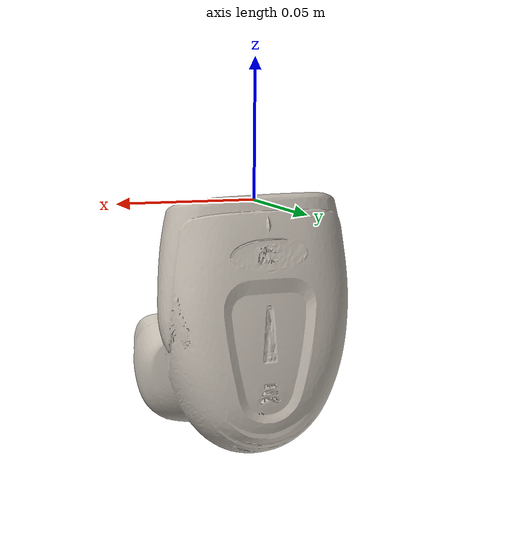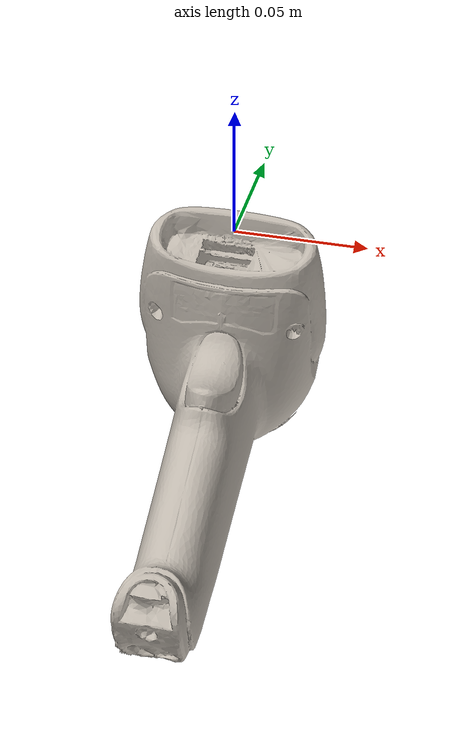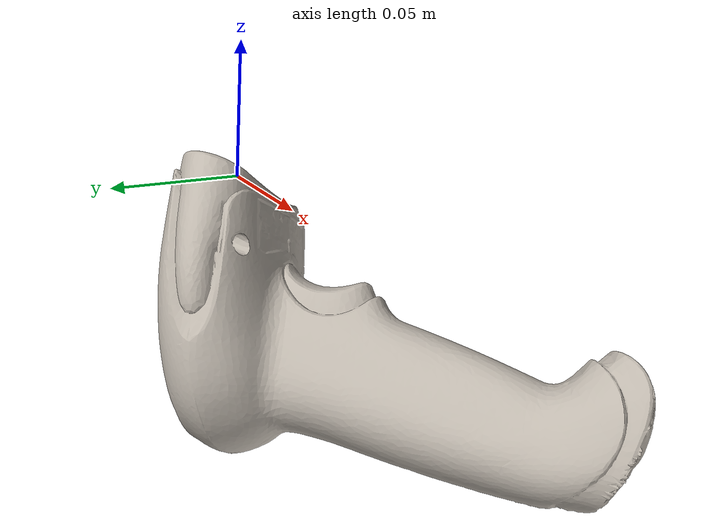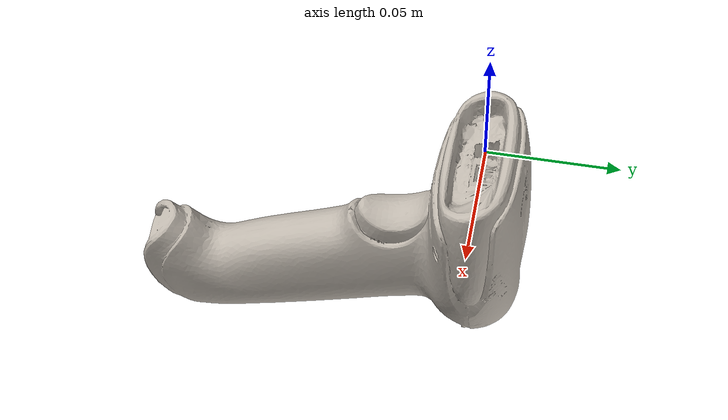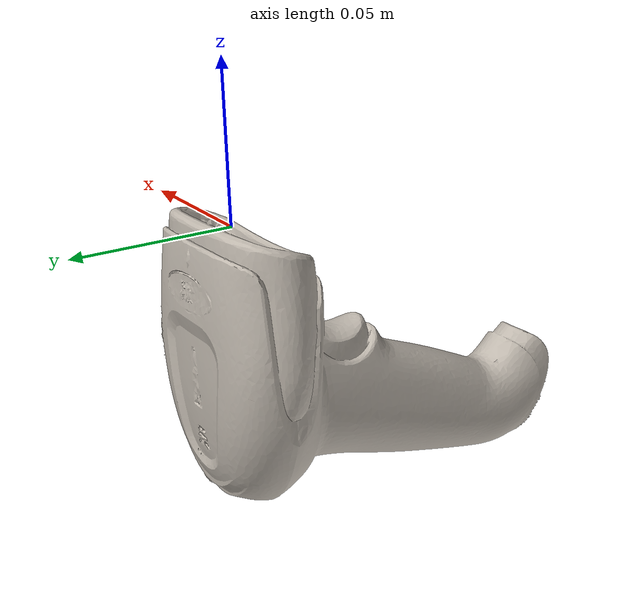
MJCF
<mujoco model="barcode_scanner">
  <compiler meshdir="assets" texturedir="assets" inertiafromgeom="true"/>

  <default>
    <default class="visual">
      <geom group="2" type="mesh" contype="0" conaffinity="0" mass="0"/>
    </default>
    <default class="collision">
      <geom group="3" type="mesh" condim="6" priority="1"/>
    </default>
  </default>

  <asset>
    <texture type="2d" name="barcode_scanner" file="barcode_scanner.png"/>
    <material name="material_0" texture="barcode_scanner"/>
    <mesh file="barcode_scanner.obj"/>
    <mesh file="barcode_scanner_collision_0.obj"/>
    <mesh file="barcode_scanner_collision_1.obj"/>
    <mesh file="barcode_scanner_collision_2.obj"/>
    <mesh file="barcode_scanner_collision_3.obj"/>
    <mesh file="barcode_scanner_collision_4.obj"/>
    <mesh file="barcode_scanner_collision_5.obj"/>
    <mesh file="barcode_scanner_collision_6.obj"/>
    <mesh file="barcode_scanner_collision_7.obj"/>
    <mesh file="barcode_scanner_collision_8.obj"/>
    <mesh file="barcode_scanner_collision_9.obj"/>
    <mesh file="barcode_scanner_collision_10.obj"/>
    <mesh file="barcode_scanner_collision_11.obj"/>
    <mesh file="barcode_scanner_collision_12.obj"/>
    <mesh file="barcode_scanner_collision_13.obj"/>
    <mesh file="barcode_scanner_collision_14.obj"/>
    <mesh file="barcode_scanner_collision_15.obj"/>
    <mesh file="barcode_scanner_collision_16.obj"/>
    <mesh file="barcode_scanner_collision_17.obj"/>
    <mesh file="barcode_scanner_collision_18.obj"/>
    <mesh file="barcode_scanner_collision_19.obj"/>
    <mesh file="barcode_scanner_collision_20.obj"/>
    <mesh file="barcode_scanner_collision_21.obj"/>
    <mesh file="barcode_scanner_collision_22.obj"/>
    <mesh file="barcode_scanner_collision_23.obj"/>
    <mesh file="barcode_scanner_collision_24.obj"/>
    <mesh file="barcode_scanner_collision_25.obj"/>
    <mesh file="barcode_scanner_collision_26.obj"/>
    <mesh file="barcode_scanner_collision_27.obj"/>
    <mesh file="barcode_scanner_collision_28.obj"/>
    <mesh file="barcode_scanner_collision_29.obj"/>
    <mesh file="barcode_scanner_collision_30.obj"/>
    <mesh file="barcode_scanner_collision_31.obj"/>
    <mesh file="barcode_scanner_collision_32.obj"/>
    <mesh file="barcode_scanner_collision_33.obj"/>
    <mesh file="barcode_scanner_collision_34.obj"/>
    <mesh file="barcode_scanner_collision_35.obj"/>
    <mesh file="barcode_scanner_collision_36.obj"/>
    <mesh file="barcode_scanner_collision_37.obj"/>
    <mesh file="barcode_scanner_collision_38.obj"/>
    <mesh file="barcode_scanner_collision_39.obj"/>
    <mesh file="barcode_scanner_collision_40.obj"/>
    <mesh file="barcode_scanner_collision_41.obj"/>
    <mesh file="barcode_scanner_collision_42.obj"/>
    <mesh file="barcode_scanner_collision_43.obj"/>
    <mesh file="barcode_scanner_collision_44.obj"/>
    <mesh file="barcode_scanner_collision_45.obj"/>
    <mesh file="barcode_scanner_collision_46.obj"/>
    <mesh file="barcode_scanner_collision_47.obj"/>
    <mesh file="barcode_scanner_collision_48.obj"/>
    <mesh file="barcode_scanner_collision_49.obj"/>
    <mesh file="barcode_scanner_collision_50.obj"/>
    <mesh file="barcode_scanner_collision_51.obj"/>
    <mesh file="barcode_scanner_collision_52.obj"/>
    <mesh file="barcode_scanner_collision_53.obj"/>
    <mesh file="barcode_scanner_collision_54.obj"/>
    <mesh file="barcode_scanner_collision_55.obj"/>
    <mesh file="barcode_scanner_collision_56.obj"/>
    <mesh file="barcode_scanner_collision_57.obj"/>
    <mesh file="barcode_scanner_collision_58.obj"/>
    <mesh file="barcode_scanner_collision_59.obj"/>
    <mesh file="barcode_scanner_collision_60.obj"/>
    <mesh file="barcode_scanner_collision_61.obj"/>
    <mesh file="barcode_scanner_collision_62.obj"/>
    <mesh file="barcode_scanner_collision_63.obj"/>
    <mesh file="barcode_scanner_collision_64.obj"/>
    <mesh file="barcode_scanner_collision_65.obj"/>
    <mesh file="barcode_scanner_collision_66.obj"/>
    <mesh file="barcode_scanner_collision_67.obj"/>
    <mesh file="barcode_scanner_collision_68.obj"/>
    <mesh file="barcode_scanner_collision_69.obj"/>
    <mesh file="barcode_scanner_collision_70.obj"/>
    <mesh file="barcode_scanner_collision_71.obj"/>
    <mesh file="barcode_scanner_collision_72.obj"/>
    <mesh file="barcode_scanner_collision_73.obj"/>
    <mesh file="barcode_scanner_collision_74.obj"/>
    <mesh file="barcode_scanner_collision_75.obj"/>
    <mesh file="barcode_scanner_collision_76.obj"/>
    <mesh file="barcode_scanner_collision_77.obj"/>
    <mesh file="barcode_scanner_collision_78.obj"/>
    <mesh file="barcode_scanner_collision_79.obj"/>
    <mesh file="barcode_scanner_collision_80.obj"/>
    <mesh file="barcode_scanner_collision_81.obj"/>
    <mesh file="barcode_scanner_collision_82.obj"/>
    <mesh file="barcode_scanner_collision_83.obj"/>
    <mesh file="barcode_scanner_collision_84.obj"/>
    <mesh file="barcode_scanner_collision_85.obj"/>
    <mesh file="barcode_scanner_collision_86.obj"/>
    <mesh file="barcode_scanner_collision_87.obj"/>
    <mesh file="barcode_scanner_collision_88.obj"/>
    <mesh file="barcode_scanner_collision_89.obj"/>
    <mesh file="barcode_scanner_collision_90.obj"/>
    <mesh file="barcode_scanner_collision_91.obj"/>
    <mesh file="barcode_scanner_collision_92.obj"/>
    <mesh file="barcode_scanner_collision_93.obj"/>
  </asset>

  <worldbody>
    <body name="body">
      <joint name="joint" type='free' damping="0.001"/>
      <geom mesh="barcode_scanner" material="material_0" class="visual"/>
      <geom mesh="barcode_scanner_collision_0" rgba="0.19980927981823005 0.4288580357367924 0.23564255013610258 1" class="collision"/>
      <geom mesh="barcode_scanner_collision_1" rgba="0.2834961197168874 0.4891366295367552 0.9809570078447242 1" class="collision"/>
      <geom mesh="barcode_scanner_collision_2" rgba="0.45564745150660346 0.5705126172051947 0.07207734566597102 1" class="collision"/>
      <geom mesh="barcode_scanner_collision_3" rgba="0.014428045184397775 0.7348503937126857 0.08571507672197898 1" class="collision"/>
      <geom mesh="barcode_scanner_collision_4" rgba="0.9028002126292173 0.04253430252042689 0.6266944075385659 1" class="collision"/>
      <geom mesh="barcode_scanner_collision_5" rgba="0.3782820472292173 0.7486862651403576 0.20059029962913355 1" class="collision"/>
      <geom mesh="barcode_scanner_collision_6" rgba="0.2783967295302928 0.11829644080364843 0.5192790258447111 1" class="collision"/>
      <geom mesh="barcode_scanner_collision_7" rgba="0.5740585480381982 0.4994544557241194 0.07552670843927212 1" class="collision"/>
      <geom mesh="barcode_scanner_collision_8" rgba="0.13686776236226483 0.6692477554446319 0.4100929376206297 1" class="collision"/>
      <geom mesh="barcode_scanner_collision_9" rgba="0.9927251591201343 0.17831776262425125 0.017472707773417917 1" class="collision"/>
      <geom mesh="barcode_scanner_collision_10" rgba="0.49562459038201245 0.7692008485171469 0.42175393553375995 1" class="collision"/>
      <geom mesh="barcode_scanner_collision_11" rgba="0.39022699116455395 0.5926913987437046 0.1561223742634309 1" class="collision"/>
      <geom mesh="barcode_scanner_collision_12" rgba="0.5194891982899842 0.2716283036412389 0.9190062877817398 1" class="collision"/>
      <geom mesh="barcode_scanner_collision_13" rgba="0.612074044632182 0.4663013122149837 0.27355385020153644 1" class="collision"/>
      <geom mesh="barcode_scanner_collision_14" rgba="0.5178505596307559 0.05658151566713687 0.1474762864165392 1" class="collision"/>
      <geom mesh="barcode_scanner_collision_15" rgba="0.6424157389257866 0.7741306687377711 0.5907429876355038 1" class="collision"/>
      <geom mesh="barcode_scanner_collision_16" rgba="0.09415048549240046 0.8803102098940002 0.5358416597813588 1" class="collision"/>
      <geom mesh="barcode_scanner_collision_17" rgba="0.9819729072965633 0.36296123923148416 0.5854573047805516 1" class="collision"/>
      <geom mesh="barcode_scanner_collision_18" rgba="0.03452763637581602 0.33216031466749296 0.893390219379762 1" class="collision"/>
      <geom mesh="barcode_scanner_collision_19" rgba="0.5414137028497388 0.7506443697797294 0.769087280233308 1" class="collision"/>
      <geom mesh="barcode_scanner_collision_20" rgba="0.5493391669556597 0.13592080234185866 0.6394958288601997 1" class="collision"/>
      <geom mesh="barcode_scanner_collision_21" rgba="0.4337371699099556 0.4308282530250561 0.3804799159475363 1" class="collision"/>
      <geom mesh="barcode_scanner_collision_22" rgba="0.058528379703544076 0.4038709370179675 0.3806410979299155 1" class="collision"/>
      <geom mesh="barcode_scanner_collision_23" rgba="0.6289618703384816 0.024634865948451434 0.5592035869146458 1" class="collision"/>
      <geom mesh="barcode_scanner_collision_24" rgba="0.49654577074944073 0.8626155765561766 0.9883977388476527 1" class="collision"/>
      <geom mesh="barcode_scanner_collision_25" rgba="0.9239429169244416 0.4677259768935449 0.022215821502247324 1" class="collision"/>
      <geom mesh="barcode_scanner_collision_26" rgba="0.31540656665702793 0.11592529904121962 0.23187186865036136 1" class="collision"/>
      <geom mesh="barcode_scanner_collision_27" rgba="0.5051449268104811 0.7604674864513258 0.7244089349578201 1" class="collision"/>
      <geom mesh="barcode_scanner_collision_28" rgba="0.3417303059550042 0.5310690920259079 0.9753060497508753 1" class="collision"/>
      <geom mesh="barcode_scanner_collision_29" rgba="0.33555475323671735 0.3011107889034632 0.12000626085491428 1" class="collision"/>
      <geom mesh="barcode_scanner_collision_30" rgba="0.009559622796728728 0.12955016232680083 0.3833603898391581 1" class="collision"/>
      <geom mesh="barcode_scanner_collision_31" rgba="0.30070069189105064 0.5865805021350394 0.26884111551798284 1" class="collision"/>
      <geom mesh="barcode_scanner_collision_32" rgba="0.2407265450437881 0.6744734482605887 0.6194473992087491 1" class="collision"/>
      <geom mesh="barcode_scanner_collision_33" rgba="0.028313870762516236 0.9322917405125155 0.2941529353910758 1" class="collision"/>
      <geom mesh="barcode_scanner_collision_34" rgba="0.771441851639406 0.207719068482055 0.7746252814729744 1" class="collision"/>
      <geom mesh="barcode_scanner_collision_35" rgba="0.3823778700703553 0.24560252486646805 0.6133624147450775 1" class="collision"/>
      <geom mesh="barcode_scanner_collision_36" rgba="0.49263614902180886 0.1035328540875674 0.792906518011723 1" class="collision"/>
      <geom mesh="barcode_scanner_collision_37" rgba="0.9791190622077398 0.541370958159874 0.010251133085978581 1" class="collision"/>
      <geom mesh="barcode_scanner_collision_38" rgba="0.02907067267393182 0.6341186692085129 0.16742322306960356 1" class="collision"/>
      <geom mesh="barcode_scanner_collision_39" rgba="0.4696771861530775 0.8242926296765827 0.9061724416902482 1" class="collision"/>
      <geom mesh="barcode_scanner_collision_40" rgba="0.27096611117058267 0.12956590427535253 0.33787658872163684 1" class="collision"/>
      <geom mesh="barcode_scanner_collision_41" rgba="0.48370611291958066 0.255020719586892 0.6990771718215155 1" class="collision"/>
      <geom mesh="barcode_scanner_collision_42" rgba="0.7020131670471156 0.5805520261405056 0.44757335902957984 1" class="collision"/>
      <geom mesh="barcode_scanner_collision_43" rgba="0.459541241930596 0.1356975780129086 0.6968002205615964 1" class="collision"/>
      <geom mesh="barcode_scanner_collision_44" rgba="0.771379407963692 0.5916426418367933 0.5191019559707273 1" class="collision"/>
      <geom mesh="barcode_scanner_collision_45" rgba="0.32334374556587375 0.6728867628381726 0.8646716425660428 1" class="collision"/>
      <geom mesh="barcode_scanner_collision_46" rgba="0.5805100798621754 0.6936691496770784 0.01983300834770363 1" class="collision"/>
      <geom mesh="barcode_scanner_collision_47" rgba="0.008943303058294827 0.972892567121866 0.6943979412609674 1" class="collision"/>
      <geom mesh="barcode_scanner_collision_48" rgba="0.9306792559458787 0.15175402848548103 0.22960710222976666 1" class="collision"/>
      <geom mesh="barcode_scanner_collision_49" rgba="0.19784727307701067 0.09430806835960015 0.7985785041605036 1" class="collision"/>
      <geom mesh="barcode_scanner_collision_50" rgba="0.5303837521324338 0.794234970809932 0.3451485614912573 1" class="collision"/>
      <geom mesh="barcode_scanner_collision_51" rgba="0.28071984288330165 0.9741005198653251 0.24202845527111227 1" class="collision"/>
      <geom mesh="barcode_scanner_collision_52" rgba="0.40275277425253153 0.4905142293071214 0.9423426933312133 1" class="collision"/>
      <geom mesh="barcode_scanner_collision_53" rgba="0.49025104601663483 0.20309415184911372 0.813982688946972 1" class="collision"/>
      <geom mesh="barcode_scanner_collision_54" rgba="0.1318684552834527 0.4093949189084405 0.1195399213179511 1" class="collision"/>
      <geom mesh="barcode_scanner_collision_55" rgba="0.03651683835534281 0.3930562671281288 0.46043709462329285 1" class="collision"/>
      <geom mesh="barcode_scanner_collision_56" rgba="0.5604198085432924 0.838942681533797 0.948530581660907 1" class="collision"/>
      <geom mesh="barcode_scanner_collision_57" rgba="0.4215187353020917 0.5898506955274062 0.7328121203343326 1" class="collision"/>
      <geom mesh="barcode_scanner_collision_58" rgba="0.3512501075108302 0.20583830211828225 0.1669741621440507 1" class="collision"/>
      <geom mesh="barcode_scanner_collision_59" rgba="0.39568567033848145 0.923563798792502 0.6197949289532196 1" class="collision"/>
      <geom mesh="barcode_scanner_collision_60" rgba="0.13811941562265495 0.5072012253467064 0.581770025820053 1" class="collision"/>
      <geom mesh="barcode_scanner_collision_61" rgba="0.4023468580674485 0.03363374834872479 0.383720013070327 1" class="collision"/>
      <geom mesh="barcode_scanner_collision_62" rgba="0.7092475637665641 0.6489552403922949 0.3224824010334172 1" class="collision"/>
      <geom mesh="barcode_scanner_collision_63" rgba="0.16518436073282405 0.6891317426552795 0.41681821844795075 1" class="collision"/>
      <geom mesh="barcode_scanner_collision_64" rgba="0.8289939201127451 0.6132726669935762 0.36267454118401055 1" class="collision"/>
      <geom mesh="barcode_scanner_collision_65" rgba="0.40722650698127294 0.39934581988729745 0.708363340790903 1" class="collision"/>
      <geom mesh="barcode_scanner_collision_66" rgba="0.8617172451641915 0.29045040911324294 0.4669248444330696 1" class="collision"/>
      <geom mesh="barcode_scanner_collision_67" rgba="0.9981598106175932 0.33646387930929267 0.7964204463565999 1" class="collision"/>
      <geom mesh="barcode_scanner_collision_68" rgba="0.8733455474376369 0.25426749808453286 0.16841950849115406 1" class="collision"/>
      <geom mesh="barcode_scanner_collision_69" rgba="0.7831590581803944 0.7001907020277671 0.19805079320678576 1" class="collision"/>
      <geom mesh="barcode_scanner_collision_70" rgba="0.6044531909510188 0.7991473461446482 0.945003234476154 1" class="collision"/>
      <geom mesh="barcode_scanner_collision_71" rgba="0.5944643531360957 0.020540036050474053 0.12167304930223988 1" class="collision"/>
      <geom mesh="barcode_scanner_collision_72" rgba="0.4254139428993402 0.8226627916775229 0.4147476955890693 1" class="collision"/>
      <geom mesh="barcode_scanner_collision_73" rgba="0.9226227553518879 0.29263630123028994 0.9390766883203483 1" class="collision"/>
      <geom mesh="barcode_scanner_collision_74" rgba="0.35512143011783814 0.8287785677236891 0.6772040373940714 1" class="collision"/>
      <geom mesh="barcode_scanner_collision_75" rgba="0.3484081276818821 0.3254515727386227 0.9569791312945487 1" class="collision"/>
      <geom mesh="barcode_scanner_collision_76" rgba="0.8826351825651068 0.25912347822087367 0.13533277540435862 1" class="collision"/>
      <geom mesh="barcode_scanner_collision_77" rgba="0.7288852684581427 0.030191754572014506 0.30089502423946113 1" class="collision"/>
      <geom mesh="barcode_scanner_collision_78" rgba="0.6663795556046008 0.1474477401328247 0.690828678028852 1" class="collision"/>
      <geom mesh="barcode_scanner_collision_79" rgba="0.9383859543957955 0.16005307847518746 0.3542196132352894 1" class="collision"/>
      <geom mesh="barcode_scanner_collision_80" rgba="0.8643113873611878 0.019201073945652625 0.5662377105188772 1" class="collision"/>
      <geom mesh="barcode_scanner_collision_81" rgba="0.925560048734703 0.23317443476863342 0.04713123226366289 1" class="collision"/>
      <geom mesh="barcode_scanner_collision_82" rgba="0.14439868573555148 0.8676843298004974 0.9543719515122734 1" class="collision"/>
      <geom mesh="barcode_scanner_collision_83" rgba="0.1477015011680216 0.8648404063459207 0.5428262616090391 1" class="collision"/>
      <geom mesh="barcode_scanner_collision_84" rgba="0.1490479806963506 0.632642891898001 0.3972135623496196 1" class="collision"/>
      <geom mesh="barcode_scanner_collision_85" rgba="0.2499662991787025 0.19689227385936825 0.5986478513682966 1" class="collision"/>
      <geom mesh="barcode_scanner_collision_86" rgba="0.6215108575421341 0.4374207466731316 0.4625657168681657 1" class="collision"/>
      <geom mesh="barcode_scanner_collision_87" rgba="0.17230119339848937 0.8748641835487422 0.6945178526404988 1" class="collision"/>
      <geom mesh="barcode_scanner_collision_88" rgba="0.6122696689129122 0.45577214820529355 0.59598783563643 1" class="collision"/>
      <geom mesh="barcode_scanner_collision_89" rgba="0.5047395079932456 0.8993898503326863 0.6092860269847934 1" class="collision"/>
      <geom mesh="barcode_scanner_collision_90" rgba="0.38020847536670777 0.3517612372183617 0.5384702176697932 1" class="collision"/>
      <geom mesh="barcode_scanner_collision_91" rgba="0.14992226496447114 0.2803837562526853 0.8492072534145619 1" class="collision"/>
      <geom mesh="barcode_scanner_collision_92" rgba="0.27521473144581143 0.22722256833638654 0.9601792864298867 1" class="collision"/>
      <geom mesh="barcode_scanner_collision_93" rgba="0.33521482022715043 0.4356502984678402 0.7421969113045768 1" class="collision"/>
    </body>
  </worldbody>
</mujoco>
